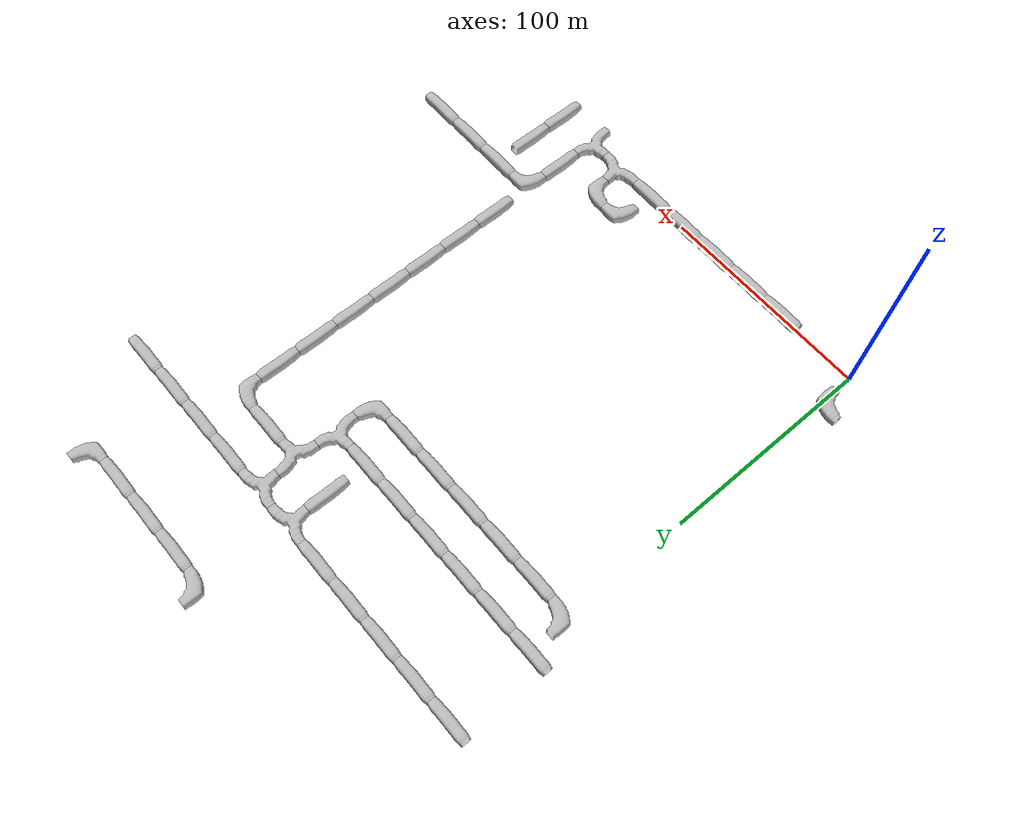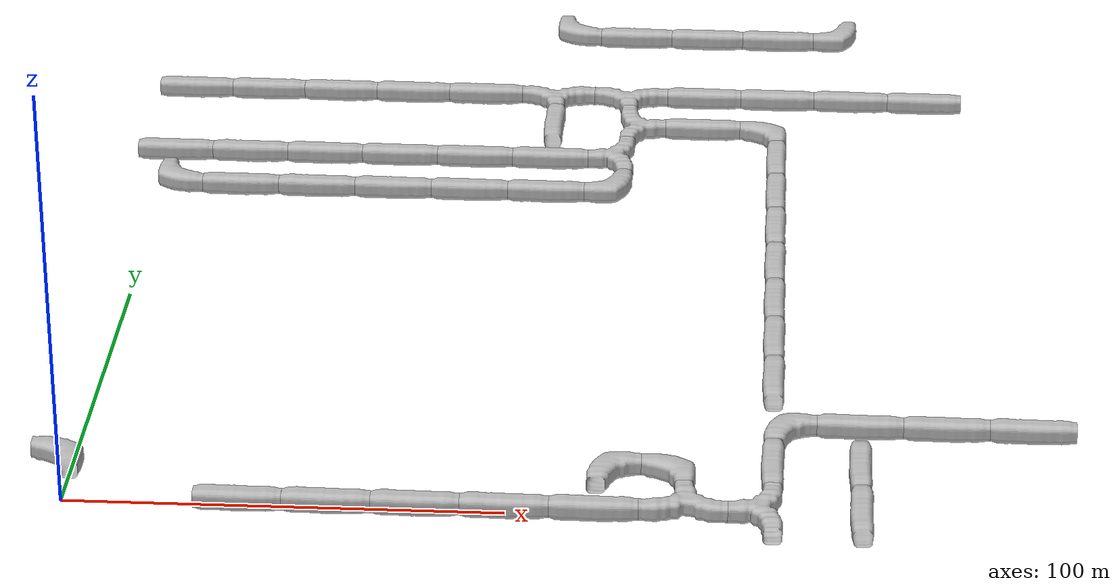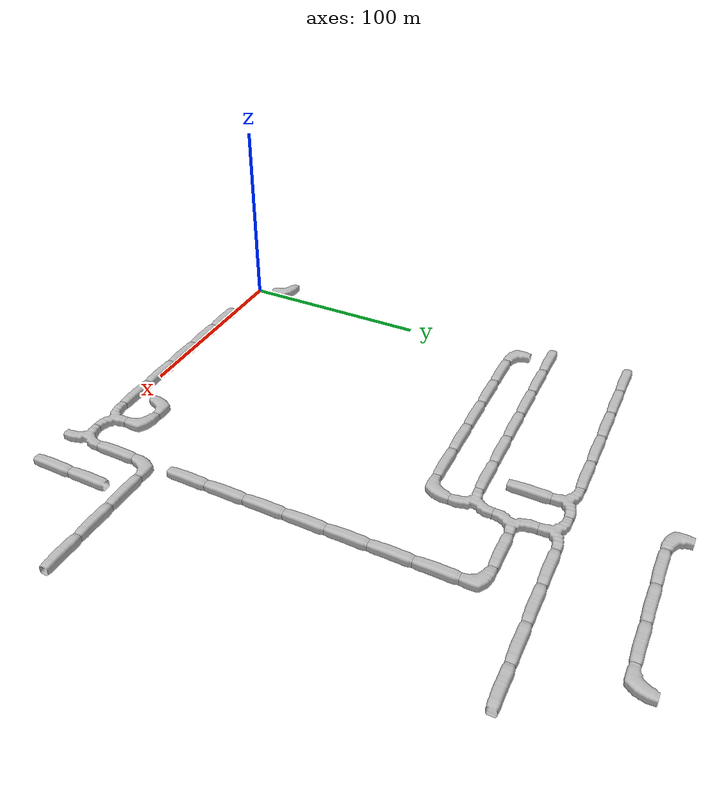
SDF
<sdf version="1.6">
 <world name="cave_32000_8">
  <include>
   <static>true</static>
   <name>cave_2_0</name>
   <pose>40 0 0 0 0 1.5707963267948966</pose>
   <uri>model://cave_straight_20m</uri>
  </include>
  <include>
   <static>true</static>
   <name>cave_3_0</name>
   <pose>60 0 0 0 0 1.5707963267948966</pose>
   <uri>model://cave_straight_20m</uri>
  </include>
  <include>
   <static>true</static>
   <name>cave_4_0</name>
   <pose>80 0 0 0 0 1.5707963267948966</pose>
   <uri>model://cave_straight_20m</uri>
  </include>
  <include>
   <static>true</static>
   <name>cave_5_0</name>
   <pose>100 0 0 0 0 1.5707963267948966</pose>
   <uri>model://cave_straight_20m</uri>
  </include>
  <include>
   <static>true</static>
   <name>cave_6_0</name>
   <pose>120 0 0 0 0 1.5707963267948966</pose>
   <uri>model://cave_straight_20m</uri>
  </include>
  <include>
   <static>true</static>
   <name>cave_7_0</name>
   <pose>140 0 0 0 0 0.0</pose>
   <uri>model://cave_3way_20m</uri>
  </include>
  <include>
   <static>true</static>
   <name>cave_8_0</name>
   <pose>160 0 0 0 0 1.5707963267948966</pose>
   <uri>model://cave_3way_20m</uri>
  </include>
  <include>
   <static>true</static>
   <name>cave_9_0</name>
   <pose>180 0 0 0 0 0.0</pose>
   <uri>model://cave_straight_20m</uri>
  </include>
  <include>
   <static>true</static>
   <name>cave_9_1</name>
   <pose>180 20 0 0 0 0.0</pose>
   <uri>model://cave_straight_20m</uri>
  </include>
  <include>
   <static>true</static>
   <name>cave_8_1</name>
   <pose>160 20 0 0 0 0.0</pose>
   <uri>model://cave_straight_20m</uri>
  </include>
  <include>
   <static>true</static>
   <name>cave_8_2</name>
   <pose>160 40 0 0 0 -1.5707963267948966</pose>
   <uri>model://cave_L_20m</uri>
  </include>
  <include>
   <static>true</static>
   <name>cave_9_2</name>
   <pose>180 40 0 0 0 1.5707963267948966</pose>
   <uri>model://cave_straight_20m</uri>
  </include>
  <include>
   <static>true</static>
   <name>cave_10_2</name>
   <pose>200 40 0 0 0 1.5707963267948966</pose>
   <uri>model://cave_straight_20m</uri>
  </include>
  <include>
   <static>true</static>
   <name>cave_11_2</name>
   <pose>220 40 0 0 0 1.5707963267948966</pose>
   <uri>model://cave_straight_20m</uri>
  </include>
  <include>
   <static>true</static>
   <name>cave_7_1</name>
   <pose>140 20 0 0 0 3.141592653589793</pose>
   <uri>model://cave_L_20m</uri>
  </include>
  <include>
   <static>true</static>
   <name>cave_6_1</name>
   <pose>120 20 0 0 0 -1.5707963267948966</pose>
   <uri>model://cave_L_20m</uri>
  </include>
  <include>
   <static>true</static>
   <name>cave_5_13</name>
   <pose>100 260 0 0 0 0.0</pose>
   <uri>model://cave_L_20m</uri>
  </include>
  <include>
   <static>true</static>
   <name>cave_6_13</name>
   <pose>120 260 0 0 0 1.5707963267948966</pose>
   <uri>model://cave_straight_20m</uri>
  </include>
  <include>
   <static>true</static>
   <name>cave_7_13</name>
   <pose>140 260 0 0 0 1.5707963267948966</pose>
   <uri>model://cave_straight_20m</uri>
  </include>
  <include>
   <static>true</static>
   <name>cave_8_13</name>
   <pose>160 260 0 0 0 1.5707963267948966</pose>
   <uri>model://cave_straight_20m</uri>
  </include>
  <include>
   <static>true</static>
   <name>cave_9_13</name>
   <pose>180 260 0 0 0 1.5707963267948966</pose>
   <uri>model://cave_L_20m</uri>
  </include>
  <include>
   <static>true</static>
   <name>cave_10_11</name>
   <pose>200 220 0 0 0 1.5707963267948966</pose>
   <uri>model://cave_straight_20m</uri>
  </include>
  <include>
   <static>true</static>
   <name>cave_9_11</name>
   <pose>180 220 0 0 0 1.5707963267948966</pose>
   <uri>model://cave_straight_20m</uri>
  </include>
  <include>
   <static>true</static>
   <name>cave_8_11</name>
   <pose>160 220 0 0 0 1.5707963267948966</pose>
   <uri>model://cave_straight_20m</uri>
  </include>
  <include>
   <static>true</static>
   <name>cave_7_11</name>
   <pose>140 220 0 0 0 1.5707963267948966</pose>
   <uri>model://cave_straight_20m</uri>
  </include>
  <include>
   <static>true</static>
   <name>cave_6_11</name>
   <pose>120 220 0 0 0 3.141592653589793</pose>
   <uri>model://cave_3way_20m</uri>
  </include>
  <include>
   <static>true</static>
   <name>cave_6_10</name>
   <pose>120 200 0 0 0 -1.5707963267948966</pose>
   <uri>model://cave_3way_20m</uri>
  </include>
  <include>
   <static>true</static>
   <name>cave_7_10</name>
   <pose>140 200 0 0 0 1.5707963267948966</pose>
   <uri>model://cave_straight_20m</uri>
  </include>
  <include>
   <static>true</static>
   <name>cave_8_10</name>
   <pose>160 200 0 0 0 3.141592653589793</pose>
   <uri>model://cave_L_20m</uri>
  </include>
  <include>
   <static>true</static>
   <name>cave_8_9</name>
   <pose>160 180 0 0 0 0.0</pose>
   <uri>model://cave_straight_20m</uri>
  </include>
  <include>
   <static>true</static>
   <name>cave_8_8</name>
   <pose>160 160 0 0 0 0.0</pose>
   <uri>model://cave_straight_20m</uri>
  </include>
  <include>
   <static>true</static>
   <name>cave_8_7</name>
   <pose>160 140 0 0 0 0.0</pose>
   <uri>model://cave_straight_20m</uri>
  </include>
  <include>
   <static>true</static>
   <name>cave_8_6</name>
   <pose>160 120 0 0 0 0.0</pose>
   <uri>model://cave_straight_20m</uri>
  </include>
  <include>
   <static>true</static>
   <name>cave_8_5</name>
   <pose>160 100 0 0 0 0.0</pose>
   <uri>model://cave_straight_20m</uri>
  </include>
  <include>
   <static>true</static>
   <name>cave_8_4</name>
   <pose>160 80 0 0 0 0.0</pose>
   <uri>model://cave_straight_20m</uri>
  </include>
  <include>
   <static>true</static>
   <name>cave_8_3</name>
   <pose>160 60 0 0 0 0.0</pose>
   <uri>model://cave_straight_20m</uri>
  </include>
  <include>
   <static>true</static>
   <name>cave_6_9</name>
   <pose>120 180 0 0 0 1.5707963267948966</pose>
   <uri>model://cave_3way_20m</uri>
  </include>
  <include>
   <static>true</static>
   <name>cave_6_8</name>
   <pose>120 160 0 0 0 1.5707963267948966</pose>
   <uri>model://cave_L_20m</uri>
  </include>
  <include>
   <static>true</static>
   <name>cave_5_8</name>
   <pose>100 160 0 0 0 1.5707963267948966</pose>
   <uri>model://cave_straight_20m</uri>
  </include>
  <include>
   <static>true</static>
   <name>cave_4_8</name>
   <pose>80 160 0 0 0 1.5707963267948966</pose>
   <uri>model://cave_straight_20m</uri>
  </include>
  <include>
   <static>true</static>
   <name>cave_3_8</name>
   <pose>60 160 0 0 0 1.5707963267948966</pose>
   <uri>model://cave_straight_20m</uri>
  </include>
  <include>
   <static>true</static>
   <name>cave_2_8</name>
   <pose>40 160 0 0 0 1.5707963267948966</pose>
   <uri>model://cave_straight_20m</uri>
  </include>
  <include>
   <static>true</static>
   <name>cave_1_8</name>
   <pose>20 160 0 0 0 1.5707963267948966</pose>
   <uri>model://cave_straight_20m</uri>
  </include>
  <include>
   <static>true</static>
   <name>cave_0_8</name>
   <pose>0 160 0 0 0 0.0</pose>
   <uri>model://cave_L_20m</uri>
  </include>
  <include>
   <static>true</static>
   <name>cave_5_9</name>
   <pose>100 180 0 0 0 1.5707963267948966</pose>
   <uri>model://cave_straight_20m</uri>
  </include>
  <include>
   <static>true</static>
   <name>cave_4_9</name>
   <pose>80 180 0 0 0 1.5707963267948966</pose>
   <uri>model://cave_straight_20m</uri>
  </include>
  <include>
   <static>true</static>
   <name>cave_3_9</name>
   <pose>60 180 0 0 0 1.5707963267948966</pose>
   <uri>model://cave_straight_20m</uri>
  </include>
  <include>
   <static>true</static>
   <name>cave_2_9</name>
   <pose>40 180 0 0 0 1.5707963267948966</pose>
   <uri>model://cave_straight_20m</uri>
  </include>
  <include>
   <static>true</static>
   <name>cave_1_9</name>
   <pose>20 180 0 0 0 1.5707963267948966</pose>
   <uri>model://cave_straight_20m</uri>
  </include>
  <include>
   <static>true</static>
   <name>cave_0_9</name>
   <pose>0 180 0 0 0 1.5707963267948966</pose>
   <uri>model://cave_straight_20m</uri>
  </include>
  <include>
   <static>true</static>
   <name>cave_5_11</name>
   <pose>100 220 0 0 0 3.141592653589793</pose>
   <uri>model://cave_3way_20m</uri>
  </include>
  <include>
   <static>true</static>
   <name>cave_5_10</name>
   <pose>100 200 0 0 0 0.0</pose>
   <uri>model://cave_straight_20m</uri>
  </include>
  <include>
   <static>true</static>
   <name>cave_4_11</name>
   <pose>80 220 0 0 0 1.5707963267948966</pose>
   <uri>model://cave_straight_20m</uri>
  </include>
  <include>
   <static>true</static>
   <name>cave_3_11</name>
   <pose>60 220 0 0 0 1.5707963267948966</pose>
   <uri>model://cave_straight_20m</uri>
  </include>
  <include>
   <static>true</static>
   <name>cave_2_11</name>
   <pose>40 220 0 0 0 1.5707963267948966</pose>
   <uri>model://cave_straight_20m</uri>
  </include>
  <include>
   <static>true</static>
   <name>cave_1_11</name>
   <pose>20 220 0 0 0 1.5707963267948966</pose>
   <uri>model://cave_straight_20m</uri>
  </include>
  <include>
   <static>true</static>
   <name>cave_0_11</name>
   <pose>0 220 0 0 0 1.5707963267948966</pose>
   <uri>model://cave_straight_20m</uri>
  </include>
  <include>
   <static>true</static>
   <name>cave_0_1</name>
   <pose>0 20 0 0 0 3.141592653589793</pose>
   <uri>model://cave_L_20m</uri>
  </include>
 </world>
</sdf>
